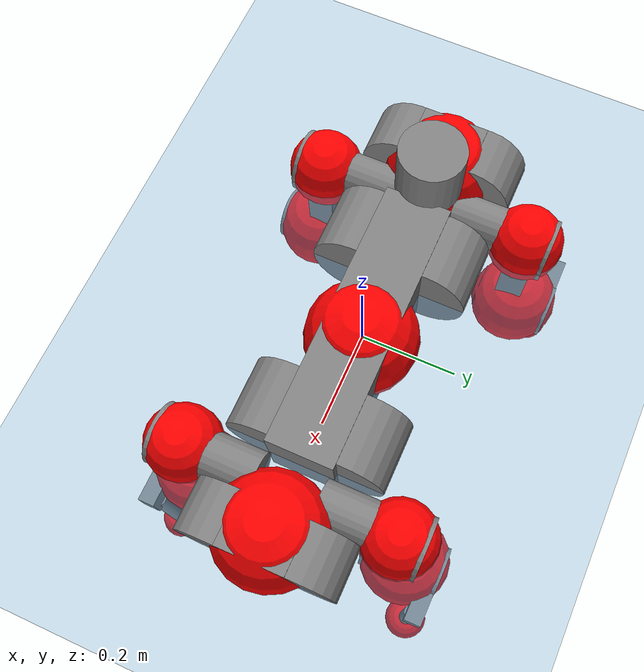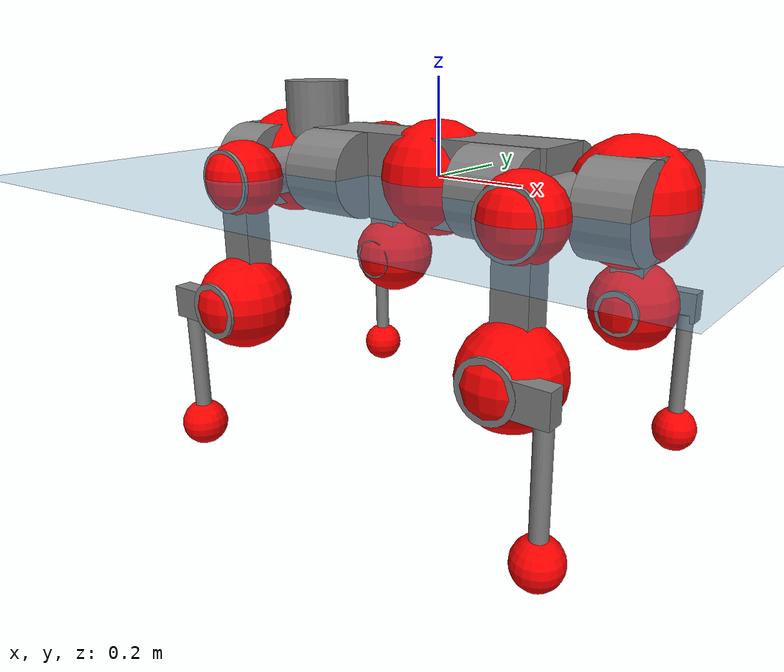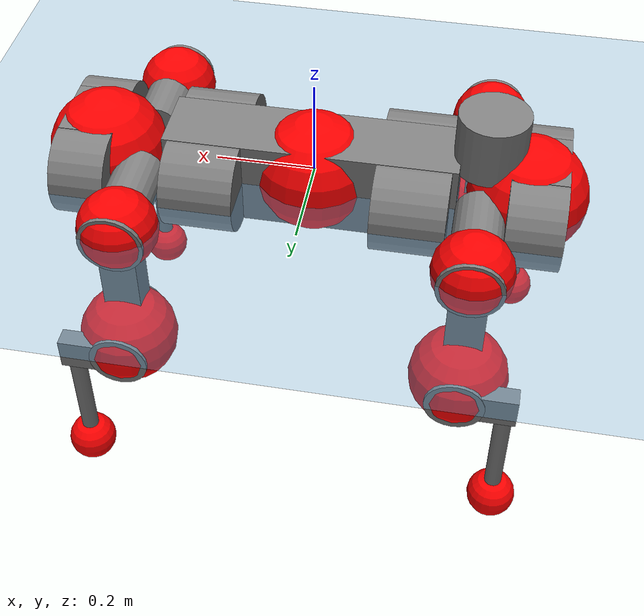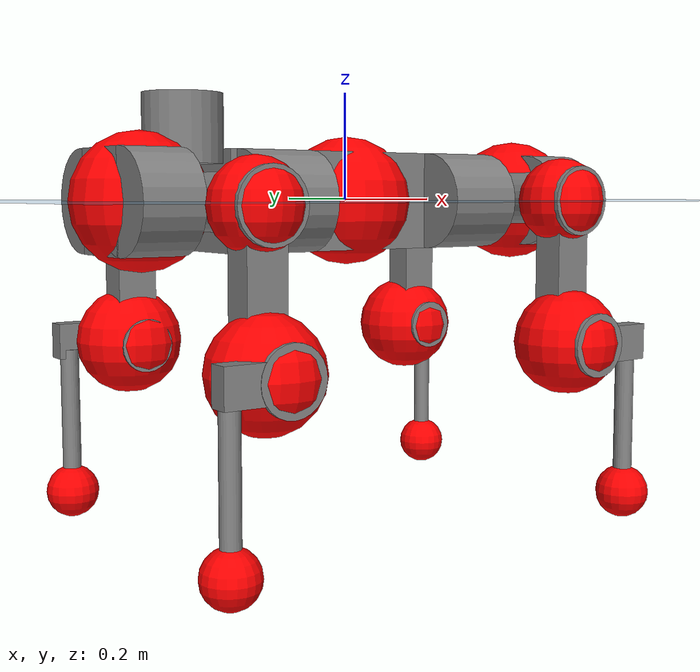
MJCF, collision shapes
<mujoco model="anymal_c">
  <compiler angle="radian" assetdir="assets" balanceinertia="true" inertiafromgeom="false"/>

  <option timestep="0.005" density="1.2" viscosity="2e-05"/>

  <size nkey="1"/>

  <visual>
    <quality shadowsize="8192"/>
    <map shadowclip="0.5"/>
  </visual>

  <default>
    <default class="/">
      <material specular="0" shininess="0.25"/>
      <geom contype="0" conaffinity="0" group="1" solref="-1000 -80"/>
      <site size="0.01 0.005 0.005" group="5"/>
      <general forcelimited="true" forcerange="-80 80" biastype="affine" gainprm="80" biasprm="0 -80 -2"/>
      <default class="anymal_c">
        <joint armature="0.01" damping="0.01" frictionloss="0.1"/>
        <default class="visual">
          <geom type="mesh" group="2"/>
          <default class="visual_zflip"/>
        </default>
        <default class="collision">
          <geom type="cylinder" group="3"/>
          <default class="foot">
            <geom size="0.03 0 0" type="sphere" condim="6" priority="1" friction="0.8 0.02 0.01" solimp="0.015 1 0.03"/>
          </default>
        </default>
      </default>
      <default class="reward_collision_sphere">
        <geom group="5" rgba="1 0 0 1"/>
      </default>
    </default>
  </default>

  <asset>
    <texture type="skybox" colorspace="auto" name="//unnamed_texture_0" builtin="gradient" rgb1="0.95 0.95 0.95" rgb2="0.95 0.95 0.95" width="100" height="600"/>
    <texture type="2d" colorspace="auto" name="texplane" builtin="checker" rgb1="0.345 0.575 0.748" rgb2="0.345 0.575 0.748" markrgb="1 1 1" width="512" height="512"/>
    <texture type="2d" colorspace="linear" name="base" file="base.png"/>
    <texture type="2d" colorspace="linear" name="top_shell" file="top_shell.png"/>
    <texture type="2d" colorspace="linear" name="bottom_shell" file="bottom_shell.png"/>
    <texture type="2d" colorspace="linear" name="remote" file="remote.png"/>
    <texture type="2d" colorspace="linear" name="hatch" file="hatch.png"/>
    <texture type="2d" colorspace="linear" name="handle" file="handle.png"/>
    <texture type="2d" colorspace="linear" name="face" file="face.png"/>
    <texture type="2d" colorspace="linear" name="battery" file="battery.png"/>
    <texture type="2d" colorspace="linear" name="lidar_cage" file="lidar_cage.png"/>
    <texture type="2d" colorspace="linear" name="depth_camera" file="depth_camera.png"/>
    <texture type="2d" colorspace="linear" name="wide_angle_camera" file="wide_angle_camera.png"/>
    <texture type="2d" colorspace="linear" name="lidar" file="lidar.png"/>
    <texture type="2d" colorspace="linear" name="drive" file="drive.png"/>
    <texture type="2d" colorspace="linear" name="hip_l" file="hip_l.png"/>
    <texture type="2d" colorspace="linear" name="shank_l" file="shank_l.png"/>
    <texture type="2d" colorspace="linear" name="foot" file="foot.png"/>
    <texture type="2d" colorspace="linear" name="thigh" file="thigh.png"/>
    <texture type="2d" colorspace="linear" name="shank_r" file="shank_r.png"/>
    <texture type="2d" colorspace="linear" name="hip_r" file="hip_r.png"/>
    <material name="MatPlane" class="/" texture="texplane" texuniform="true" texrepeat="2 2" specular="0.9" shininess="0.5"/>
    <material name="black_plastic" class="/" rgba="0.007 0.007 0.007 1"/>
    <material name="green" class="/" rgba="0.052 0.178 0.033 1"/>
    <material name="red" class="/" rgba="0.178 0.006 0.005 1"/>
    <material name="yellow" class="/" rgba="0.178 0.119 0.006 1"/>
    <material name="lwl" class="/" rgba="0.8 0.8 0.8 1"/>
    <material name="base" class="/" texture="base"/>
    <material name="top_shell" class="/" texture="top_shell"/>
    <material name="bottom_shell" class="/" texture="bottom_shell"/>
    <material name="hip_l" class="/" texture="hip_l"/>
    <material name="thigh" class="/" texture="thigh"/>
    <material name="shank_l" class="/" texture="shank_l"/>
    <material name="foot" class="/" texture="foot"/>
    <material name="hip_r" class="/" texture="hip_r"/>
    <material name="shank" class="/" texture="shank_r"/>
    <material name="hatch" class="/" texture="hatch"/>
    <material name="remote" class="/" texture="remote"/>
    <material name="handle" class="/" texture="handle"/>
    <material name="face" class="/" texture="face"/>
    <material name="depth_camera" class="/" texture="depth_camera"/>
    <material name="wide_angle_camera" class="/" texture="wide_angle_camera"/>
    <material name="battery" class="/" texture="battery"/>
    <material name="lidar_cage" class="/" texture="lidar_cage"/>
    <material name="lidar" class="/" texture="lidar"/>
    <material name="drive" class="/" texture="drive"/>
    <mesh name="base_0" class="/" file="base_0.obj"/>
    <mesh name="base_1" class="/" file="base_1.obj"/>
    <mesh name="base_2" class="/" file="base_2.obj"/>
    <mesh name="base_3" class="/" file="base_3.obj"/>
    <mesh name="base_4" class="/" file="base_4.obj"/>
    <mesh name="base_5" class="/" file="base_5.obj"/>
    <mesh name="top_shell" class="/" file="top_shell.obj"/>
    <mesh name="bottom_shell" class="/" file="bottom_shell.obj"/>
    <mesh name="remote" class="/" file="remote.obj"/>
    <mesh name="handle" class="/" file="handle.obj"/>
    <mesh name="face" class="/" file="face.obj"/>
    <mesh name="wide_angle_camera" class="/" file="wide_angle_camera.obj"/>
    <mesh name="depth_camera" class="/" file="depth_camera.obj"/>
    <mesh name="battery" class="/" file="battery.obj"/>
    <mesh name="lidar_cage" class="/" file="lidar_cage.obj"/>
    <mesh name="lidar" class="/" file="lidar.obj"/>
    <mesh name="drive" class="/" file="drive.obj"/>
    <mesh name="hip_l" class="/" file="hip_l.obj"/>
    <mesh name="thigh" class="/" file="thigh.obj"/>
    <mesh name="shank_l" class="/" file="shank_l.obj"/>
    <mesh name="foot" class="/" file="foot.obj"/>
    <mesh name="hip_r" class="/" file="hip_r.obj"/>
    <mesh name="hatch" class="/" file="hatch.obj"/>
    <mesh name="shank_r" class="/" file="shank_r.obj"/>
  </asset>

  <worldbody>
    <geom name="floor" class="/" size="100 100 0.125" type="plane" group="0" material="MatPlane"/>
    <light name="toplight_shadow" class="/" pos="0 0 5" dir="0.0990148 0.0990148 -0.990148" type="directional" ambient="0.04 0.04 0.04" diffuse="0.55 0.55 0.55" specular="0.12 0.12 0.12"/>
    <light name="toplight_fill" class="/" pos="0 0 5" dir="0.0990148 0.0990148 -0.990148" type="directional" castshadow="false" ambient="0.04 0.04 0.04" diffuse="0.3 0.3 0.3" specular="0.08 0.08 0.08"/>
    <body name="trunk" childclass="anymal_c" pos="0.000926454 -0.00133463 -0.00265618" quat="1 -0.000126701 7.65863e-05 0.000631812">
      <inertial pos="0.000147064 0.00239166 0.0462791" quat="0.492485 0.498569 0.504105 0.504742" mass="20.1006" diaginertia="0.515835 1.16077 0.161649"/>
      <joint name="//unnamed_joint_0" type="free" armature="0" damping="0" frictionloss="0"/>
      <geom name="//unnamed_geom_1" class="visual" material="green" mesh="base_0"/>
      <geom name="//unnamed_geom_2" class="visual" material="yellow" mesh="base_1"/>
      <geom name="//unnamed_geom_3" class="visual" material="red" mesh="base_2"/>
      <geom name="//unnamed_geom_4" class="visual" material="black_plastic" mesh="base_3"/>
      <geom name="//unnamed_geom_5" class="visual" material="lwl" mesh="base_4"/>
      <geom name="//unnamed_geom_6" class="visual" material="base" mesh="base_5"/>
      <geom name="trunk_1" class="collision" size="0.290858 0.0702072 0.0902664" type="box"/>
      <geom name="trunk_2" class="collision" size="0.0902664 0.0727146" pos="0.205855 0.0787944 0" quat="0.707107 0 0.707107 0"/>
      <geom name="trunk_3" class="collision" size="0.0902664 0.0727146" pos="-0.205855 0.0787944 0" quat="0.707107 0 0.707107 0"/>
      <geom name="trunk_4" class="collision" size="0.0902664 0.0727146" pos="0.205855 -0.0787944 0" quat="0.707107 0 0.707107 0"/>
      <geom name="trunk_5" class="collision" size="0.0902664 0.0727146" pos="-0.205855 -0.0787944 0" quat="0.707107 0 0.707107 0"/>
      <geom name="//unnamed_geom_12" class="visual" material="top_shell" mesh="top_shell"/>
      <geom name="//unnamed_geom_13" class="visual" material="bottom_shell" mesh="bottom_shell"/>
      <geom name="//unnamed_geom_14" class="visual" material="remote" mesh="remote"/>
      <geom name="//unnamed_geom_15" class="visual" material="handle" mesh="handle"/>
      <geom name="//unnamed_geom_16" class="visual" pos="0.392308 0 0" quat="1 0 0 0" material="face" mesh="face"/>
      <geom name="trunk_6" class="collision" size="0.0551628 0.0702072 0.0902664" pos="0.444364 0 0" type="box"/>
      <geom name="//unnamed_geom_18" class="collision" size="0.0902664 0.0551628" pos="0.444364 0.0787944 0" quat="0.707107 0 0.707107 0"/>
      <geom name="//unnamed_geom_19" class="collision" size="0.0902664 0.0551628" pos="0.444364 -0.0787944 0" quat="0.707107 0 0.707107 0"/>
      <geom name="//unnamed_geom_20" class="visual" pos="0.436934 0 -0.0272806" quat="0.965926 0 0.258819 0" material="depth_camera" mesh="depth_camera"/>
      <geom name="//unnamed_geom_21" class="visual" pos="0.485535 0 0.0140237" material="wide_angle_camera" mesh="wide_angle_camera"/>
      <geom name="//unnamed_geom_22" class="visual_zflip" pos="-0.392308 0 0" quat="0 0 0 1" material="face" mesh="face"/>
      <geom name="trunk_7" class="collision" size="0.0551628 0.0702072 0.0902664" pos="-0.444364 0 0" quat="0 0 0 1" type="box"/>
      <geom name="//unnamed_geom_24" class="collision" size="0.0902664 0.0551628" pos="-0.444364 -0.0787944 0" quat="0 -0.707107 0 0.707107"/>
      <geom name="//unnamed_geom_25" class="collision" size="0.0902664 0.0551628" pos="-0.444364 0.0787944 0" quat="0 -0.707107 0 0.707107"/>
      <geom name="//unnamed_geom_26" class="visual" pos="-0.436934 0 -0.0272806" quat="0 -0.258819 0 0.965926" material="depth_camera" mesh="depth_camera"/>
      <geom name="//unnamed_geom_27" class="visual_zflip" pos="-0.485535 0 0.0140237" quat="0 0 0 1" material="wide_angle_camera" mesh="wide_angle_camera"/>
      <geom name="//unnamed_geom_28" class="visual" material="battery" mesh="battery"/>
      <geom name="//unnamed_geom_29" class="visual" pos="0 0.0884167 0.0272871" quat="0.683013 -0.183013 0.183013 0.683013" material="depth_camera" mesh="depth_camera"/>
      <geom name="//unnamed_geom_30" class="visual" pos="0 -0.0884167 0.0272871" quat="0.683013 0.183013 0.183013 -0.683013" material="depth_camera" mesh="depth_camera"/>
      <geom name="//unnamed_geom_31" class="visual" pos="-0.344512 0 0.0688537" quat="1 0 0 0" material="lidar_cage" mesh="lidar_cage"/>
      <geom name="trunk_8" class="collision" size="0.0702072 0.0601776" pos="-0.344512 0 0.125061"/>
      <geom name="//unnamed_geom_33" class="visual" pos="-0.344512 7.03921e-05 0.133211" quat="0.707107 0 0 -0.707107" material="lidar" mesh="lidar"/>
      <geom name="//unnamed_geom_34" class="visual" pos="0.283844 0.116999 3.25768e-09" quat="0.258819 0.965926 0 0" material="drive" mesh="drive"/>
      <geom name="//unnamed_geom_35" class="visual" pos="0.283844 -0.116999 -3.25768e-09" quat="0.258819 -0.965926 0 0" material="drive" mesh="drive"/>
      <geom name="//unnamed_geom_36" class="visual" pos="-0.283844 0.116999 -3.25768e-09" quat="0 0 0.965926 -0.258819" material="drive" mesh="drive"/>
      <geom name="//unnamed_geom_37" class="visual" pos="-0.283844 -0.116999 3.25768e-09" quat="0 0 -0.965926 -0.258819" material="drive" mesh="drive"/>
      <geom name="//unnamed_geom_38" class="visual" pos="0.10979 0 0.0683853" quat="1 0 0 0" material="hatch" mesh="hatch"/>
      <geom name="//unnamed_geom_39" class="reward_collision_sphere" size="0.120355"/>
      <geom name="//unnamed_geom_40" class="reward_collision_sphere" size="0.120355" pos="0.425908 0 0"/>
      <geom name="//unnamed_geom_41" class="reward_collision_sphere" size="0.120355" pos="-0.425908 0 0"/>
      <site name="imu" pos="0.231914 0.00863406 0.042495" size="0.0100296"/>
      <camera name="track" pos="0 -2.25127 0" quat="0.707107 0.707107 0 0" mode="trackcom"/>
      <camera name="ego_camera" pos="0.425908 0 -0.0374714" quat="-0.5 -0.5 0.5 0.5"/>
      <body name="LF_HIP" pos="0.28524 0.117315 0.000415288" quat="0.258756 0.965943 1.99285e-05 -7.38448e-05">
        <inertial pos="0.0535136 -0.0170206 -0.00812947" quat="-0.134487 0.720198 -0.133779 0.667331" mass="2.85083" diaginertia="0.00456601 0.00884236 0.00244851"/>
        <joint name="LF_HAA" pos="0 0 0" axis="0.999869 -0.0160169 -0.00249256" range="-0.763746 0.448597" armature="0.0102747" damping="0.00727954" frictionloss="0.104601"/>
        <geom name="//unnamed_geom_42" class="visual" pos="0 0.000191634 -3.14758e-05" quat="0.258819 -0.965926 0 0" material="hip_l" mesh="hip_l"/>
        <geom name="//unnamed_geom_43" class="visual" pos="0.056693 -0.0709877 -0.0395879" quat="0.183013 -0.683013 0.683013 0.183013" material="drive" mesh="drive"/>
        <geom name="//unnamed_geom_44" class="collision" size="0.050148 0.0702072" pos="0.056693 -0.0134624 -0.0064685" quat="-0.353553 -0.612372 0.612372 -0.353553"/>
        <body name="LF_THIGH" pos="0.0567995 -0.0796379 -0.035917" quat="0.181924 -0.682736 0.683681 0.182635">
          <inertial pos="0.0302998 -0.00270553 -0.231862" quat="0.992736 -0.00204171 -0.0917927 0.0777445" mass="3.15019" diaginertia="0.022972 0.0519694 0.00298794"/>
          <joint name="LF_HFE" pos="0 0 0" axis="0.999983 -0.00573879 -0.00102622" stiffness="0.0124009" range="-3.16606 3.16993" armature="0.0088386" damping="0.0175917" frictionloss="0.0900276"/>
          <geom name="//unnamed_geom_45" class="visual" pos="-0.00356483 -5.61734e-06 0" quat="0.707107 0 0 -0.707107" material="thigh" mesh="thigh"/>
          <geom name="//unnamed_geom_46" class="collision" size="0.0651924 0.0401184" pos="0.0378585 0 0" quat="0.5 0.5 -0.5 -0.5"/>
          <geom name="//unnamed_geom_47" class="collision" size="0.037611 0.0300888 0.141732" pos="0.0283938 0 -0.132381" quat="0.707107 0 0 -0.707107" type="box"/>
          <geom name="//unnamed_geom_48" class="visual" pos="0.0949301 0 -0.266984" quat="1 0 0 0" material="drive" mesh="drive"/>
          <geom name="//unnamed_geom_49" class="collision" size="0.050148 0.0702072" pos="0.0286778 0 -0.266984" quat="0.707107 0 0.707107 0"/>
          <geom name="//unnamed_geom_50" class="reward_collision_sphere" size="0.0802368" pos="0.0236615 0 0"/>
          <body name="LF_SHANK" pos="0.0964018 0.000989848 -0.269449" quat="1 0.000152144 0.000155433 -0.000234861">
            <inertial pos="0.00606477 -0.0705367 -0.0756884" quat="0.991676 -0.127393 0.000486705 -0.0187133" mass="0.601262" diaginertia="0.00760711 0.0160557 0.000784244"/>
            <joint name="LF_KFE" pos="0 0 0" axis="0.999998 -0.00143147 -0.00169062" stiffness="0.00365877" range="-3.19557 3.14495" armature="0.00889811" damping="0.00938346" frictionloss="0.113704"/>
            <geom name="//unnamed_geom_51" class="visual" pos="-0.00116241 -0.00619804 0" quat="0.707107 0 0 -0.707107" material="shank_l" mesh="shank_l"/>
            <geom name="LF_kfe_act" class="collision" size="0.0601776 0.0200592" pos="0.0189292 0 0" quat="0.5 0.5 -0.5 -0.5"/>
            <geom name="//unnamed_geom_53" class="collision" size="0.0576692 0.0338499 0.0190562" pos="0.0189292 -0.0647228 0" quat="0.5 0.5 -0.5 -0.5" type="box"/>
            <geom name="//unnamed_geom_54" class="visual" pos="0.0123516 -0.100997 -0.316605" quat="0.382683 0 0 -0.92388" material="foot" mesh="foot"/>
            <geom name="LF_calf" class="collision" size="0.0175518 0.14167" pos="0.0123513 -0.0989995 -0.158303" quat="0.707107 0 0 -0.707107"/>
            <geom name="LF_foot" class="foot" size="0.0289591" pos="0.0123513 -0.0989995 -0.295527" quat="0.707107 0 0 -0.707107"/>
            <geom name="//unnamed_geom_57" class="reward_collision_sphere" size="0.100296" pos="-0.0473231 0 0"/>
            <geom name="//unnamed_geom_58" class="reward_collision_sphere" size="0.050148" pos="0.0123513 -0.0989995 -0.295527"/>
            <site name="LF_foot" class="foot" pos="0.0123513 -0.0989995 -0.295527" quat="0.707107 0 0 -0.707107" size="0.0100296"/>
          </body>
        </body>
      </body>
      <body name="RF_HIP" pos="0.286529 -0.119521 0.00605414" quat="0.257822 -0.966192 0.000492996 0.000388853">
        <inertial pos="0.0524753 0.0203768 -0.010204" quat="0.130722 0.677681 0.126118 0.712569" mass="2.68031" diaginertia="0.00434326 0.00888662 0.00242587"/>
        <joint name="RF_HAA" pos="0 0 0" axis="0.999935 0.00292419 0.0110306" stiffness="0.0154467" range="-0.484958 0.710817" armature="0.00880041" damping="0.0106159" frictionloss="0.113301"/>
        <geom name="//unnamed_geom_59" class="visual" pos="0 -0.000191633 -3.14757e-05" quat="0.258819 0.965926 0 0" material="hip_r" mesh="hip_r"/>
        <geom name="//unnamed_geom_60" class="visual" pos="0.056693 0.0709877 -0.0395879" quat="0.183013 0.683013 0.683013 -0.183013" material="drive" mesh="drive"/>
        <geom name="//unnamed_geom_61" class="collision" size="0.050148 0.0702072" pos="0.056693 0.0134624 -0.0064685" quat="-0.353553 0.612372 0.612372 0.353553"/>
        <body name="RF_THIGH" pos="0.0542905 0.0771046 -0.0375062" quat="0.18316 0.683125 0.682811 -0.183199">
          <inertial pos="0.0315381 -0.0015569 -0.231622" quat="0.991129 -0.00571701 -0.091901 0.095835" mass="3.18839" diaginertia="0.0225179 0.0537045 0.00300163"/>
          <joint name="RF_HFE" pos="0 0 0" axis="0.999994 0.00324807 0.000908019" range="-3.12696 3.19313" armature="0.0104953" damping="0.00433669" frictionloss="0.0918863"/>
          <geom name="//unnamed_geom_62" class="visual" pos="-0.00356483 -5.61734e-06 0" quat="0.707107 0 0 -0.707107" material="thigh" mesh="thigh"/>
          <geom name="//unnamed_geom_63" class="collision" size="0.0651924 0.0401184" pos="0.0378585 0 0" quat="0.5 0.5 0.5 0.5"/>
          <geom name="//unnamed_geom_64" class="collision" size="0.037611 0.0300888 0.141732" pos="0.0283938 0 -0.132381" quat="0.707107 0 0 0.707107" type="box"/>
          <geom name="//unnamed_geom_65" class="visual" pos="0.0949301 0 -0.266984" quat="1 0 0 0" material="drive" mesh="drive"/>
          <geom name="//unnamed_geom_66" class="collision" size="0.050148 0.0702072" pos="0.0286778 0 -0.266984" quat="0.707107 0 0.707107 0"/>
          <geom name="//unnamed_geom_67" class="reward_collision_sphere" size="0.0802368" pos="0.0236615 0 0"/>
          <body name="RF_SHANK" pos="0.0910628 0.000925641 -0.268907" quat="0.999999 -8.15788e-05 -0.000482789 -0.000972454">
            <inertial pos="0.0035746 0.0703584 -0.0756754" quat="0.992311 0.122596 -0.00652165 0.0157047" mass="0.574842" diaginertia="0.00721587 0.0163521 0.000763484"/>
            <joint name="RF_KFE" pos="0 0 0" axis="0.999998 0.00133372 0.00128376" range="-3.07789 3.18691" armature="0.00932236" damping="0.0169714" frictionloss="0.0867985"/>
            <geom name="//unnamed_geom_68" class="visual" pos="-0.00116241 0.00619803 0" quat="0.707107 0 0 0.707107" material="shank" mesh="shank_r"/>
            <geom name="RF_kfe_act" class="collision" size="0.0601776 0.0200592" pos="0.0189292 0 0" quat="0.5 0.5 0.5 0.5"/>
            <geom name="//unnamed_geom_70" class="collision" size="0.0576692 0.0338499 0.0190562" pos="0.0189292 0.0647228 0" quat="0.5 0.5 0.5 0.5" type="box"/>
            <geom name="//unnamed_geom_71" class="visual" pos="0.012351 0.100997 -0.316605" quat="0.382683 0 0 0.92388" material="foot" mesh="foot"/>
            <geom name="RF_calf" class="collision" size="0.0175518 0.14167" pos="0.0123513 0.0989995 -0.158303" quat="0.707107 0 0 0.707107"/>
            <geom name="RF_foot" class="foot" size="0.033487" pos="0.0123513 0.0989995 -0.295527" quat="0.707107 0 0 0.707107"/>
            <geom name="//unnamed_geom_74" class="reward_collision_sphere" size="0.100296" pos="-0.0473231 0 0"/>
            <geom name="//unnamed_geom_75" class="reward_collision_sphere" size="0.050148" pos="0.0123513 0.0989995 -0.295527"/>
            <site name="RF_foot" class="foot" pos="0.0123513 0.0989995 -0.295527" quat="0.707107 0 0 0.707107" size="0.0100296"/>
          </body>
        </body>
      </body>
      <body name="LH_HIP" pos="-0.283148 0.119779 0.0016842" quat="0.000135388 -2.20494e-06 0.965902 -0.258908">
        <inertial pos="0.0558228 0.0145644 -0.00612153" quat="0.135911 0.670534 0.130869 0.717486" mass="2.81085" diaginertia="0.00419161 0.00834237 0.00235197"/>
        <joint name="LH_HAA" pos="0 0 0" axis="0.999934 0.00478924 -0.0104732" range="-0.498132 0.669443" armature="0.00886706" damping="0.0106318" frictionloss="0.10268"/>
        <geom name="//unnamed_geom_76" class="visual" pos="0 -0.000191633 -3.14757e-05" quat="-0.258819 -0.965926 0 0" material="hip_r" mesh="hip_r"/>
        <geom name="//unnamed_geom_77" class="visual" pos="0.056693 0.0709877 -0.0395879" quat="0.183013 0.683013 0.683013 -0.183013" material="drive" mesh="drive"/>
        <geom name="//unnamed_geom_78" class="collision" size="0.050148 0.0702072" pos="0.056693 0.0134624 -0.0064685" quat="-0.353553 0.612372 0.612372 0.353553"/>
        <body name="LH_THIGH" pos="0.0559852 0.0787749 -0.0393991" quat="0.183443 0.683018 0.68307 -0.182347">
          <inertial pos="0.028677 -0.00334048 -0.227265" quat="0.992997 -0.00603349 -0.0783018 0.0882553" mass="3.16811" diaginertia="0.022242 0.0550505 0.00296899"/>
          <joint name="LH_HFE" pos="0 0 0" axis="0.999887 0.00447983 -0.014382" range="-3.16846 3.14899" armature="0.0107443" damping="0.0106367" frictionloss="0.0901052"/>
          <geom name="//unnamed_geom_79" class="visual" pos="-0.00356483 -5.61734e-06 0" quat="0.707107 0 0 -0.707107" material="thigh" mesh="thigh"/>
          <geom name="//unnamed_geom_80" class="collision" size="0.0651924 0.0401184" pos="0.0378585 0 0" quat="0.5 0.5 -0.5 -0.5"/>
          <geom name="//unnamed_geom_81" class="collision" size="0.037611 0.0300888 0.141732" pos="0.0283938 0 -0.132381" quat="0.707107 0 0 -0.707107" type="box"/>
          <geom name="//unnamed_geom_82" class="visual" pos="0.0949301 0 -0.266984" quat="1 0 0 0" material="drive" mesh="drive"/>
          <geom name="//unnamed_geom_83" class="collision" size="0.050148 0.0702072" pos="0.0286778 0 -0.266984" quat="0.707107 0 0.707107 0"/>
          <geom name="//unnamed_geom_84" class="reward_collision_sphere" size="0.0802368" pos="0.0236615 0 0"/>
          <body name="LH_SHANK" pos="0.092871 -0.00205289 -0.26523" quat="0.999999 0.000785929 0.000625138 -0.000375981">
            <inertial pos="0.00450408 0.0687857 -0.076073" quat="0.992936 0.11587 -0.00116115 0.0255116" mass="0.585953" diaginertia="0.00778643 0.0168744 0.000820436"/>
            <joint name="LH_KFE" pos="0 0 0" axis="0.999988 0.000112803 -0.00484464" range="-3.18842 3.13031" armature="0.00864701" damping="0.0115895" frictionloss="0.0926394"/>
            <geom name="//unnamed_geom_85" class="visual" pos="-0.00116241 0.00619803 0" quat="-0.707107 0 0 -0.707107" material="shank" mesh="shank_r"/>
            <geom name="LH_kfe_act" class="collision" size="0.0601776 0.0200592" pos="0.0189292 0 0" quat="0.5 0.5 -0.5 -0.5"/>
            <geom name="//unnamed_geom_87" class="collision" size="0.0576692 0.0338499 0.0190562" pos="0.0189292 0.0647228 0" quat="0.5 0.5 -0.5 -0.5" type="box"/>
            <geom name="//unnamed_geom_88" class="visual" pos="0.012351 0.100997 -0.316605" quat="-0.382683 0 0 -0.92388" material="foot" mesh="foot"/>
            <geom name="LH_calf" class="collision" size="0.0175518 0.14167" pos="0.0123513 0.0989995 -0.158303" quat="0.707107 0 0 -0.707107"/>
            <geom name="LH_foot" class="foot" size="0.0325858" pos="0.0123513 0.0989995 -0.295527" quat="0.707107 0 0 -0.707107"/>
            <geom name="//unnamed_geom_91" class="reward_collision_sphere" size="0.100296" pos="-0.0473231 0 0"/>
            <geom name="//unnamed_geom_92" class="reward_collision_sphere" size="0.050148" pos="0.0123513 0.0989995 -0.295527"/>
            <site name="LH_foot" class="foot" pos="0.0123513 0.0989995 -0.295527" quat="0.707107 0 0 -0.707107" size="0.0100296"/>
          </body>
        </body>
      </body>
      <body name="RH_HIP" pos="-0.281341 -0.116523 0.000291846" quat="0.0013805 -0.000430511 -0.965777 -0.259371">
        <inertial pos="0.053472 -0.0199325 -0.00956755" quat="-0.131108 0.708811 -0.138254 0.679179" mass="2.70813" diaginertia="0.00431645 0.00891568 0.00220868"/>
        <joint name="RH_HAA" pos="0 0 0" axis="0.999993 -0.000844848 -0.00356118" range="-0.768343 0.515666" armature="0.00929859" damping="0.00361287" frictionloss="0.108975"/>
        <geom name="//unnamed_geom_93" class="visual" pos="0 0.000191634 -3.14758e-05" quat="-0.258819 0.965926 0 0" material="hip_l" mesh="hip_l"/>
        <geom name="//unnamed_geom_94" class="visual" pos="0.056693 -0.0709877 -0.0395879" quat="-0.183013 0.683013 -0.683013 -0.183013" material="drive" mesh="drive"/>
        <geom name="//unnamed_geom_95" class="collision" size="0.050148 0.0702072" pos="0.056693 -0.0134624 -0.0064685" quat="0.353553 0.612372 -0.612372 0.353553"/>
        <body name="RH_THIGH" pos="0.055361 -0.0813952 -0.0408907" quat="-0.183105 0.68223 -0.683905 -0.182505">
          <inertial pos="0.0285608 -0.000637862 -0.230018" quat="0.993033 -0.00932463 -0.0858269 0.0802006" mass="3.29314" diaginertia="0.0233873 0.0537934 0.00305138"/>
          <joint name="RH_HFE" pos="0 0 0" axis="0.999971 0.00416481 -0.00642498" range="-3.1412 3.08205" armature="0.0112594" damping="0.00796361" frictionloss="0.0996274"/>
          <geom name="//unnamed_geom_96" class="visual" pos="-0.00356483 -5.61734e-06 0" quat="0.707107 0 0 -0.707107" material="thigh" mesh="thigh"/>
          <geom name="//unnamed_geom_97" class="collision" size="0.0651924 0.0401184" pos="0.0378585 0 0" quat="0.5 0.5 0.5 0.5"/>
          <geom name="//unnamed_geom_98" class="collision" size="0.037611 0.0300888 0.141732" pos="0.0283938 0 -0.132381" quat="0.707107 0 0 0.707107" type="box"/>
          <geom name="//unnamed_geom_99" class="visual" pos="0.0949301 0 -0.266984" quat="1 0 0 0" material="drive" mesh="drive"/>
          <geom name="//unnamed_geom_100" class="collision" size="0.050148 0.0702072" pos="0.0286778 0 -0.266984" quat="0.707107 0 0.707107 0"/>
          <geom name="//unnamed_geom_101" class="reward_collision_sphere" size="0.0802368" pos="0.0236615 0 0"/>
          <body name="RH_SHANK" pos="0.0968153 7.10564e-05 -0.265382" quat="1 -5.58763e-05 -0.000184911 -0.000106088">
            <inertial pos="0.003233 -0.0669239 -0.0749957" quat="0.992738 -0.117543 -0.00238017 -0.0254662" mass="0.60628" diaginertia="0.00800502 0.017267 0.000804664"/>
            <joint name="RH_KFE" pos="0 0 0" axis="0.999999 -0.00149909 -0.000736214" stiffness="0.00809705" range="-3.15583 3.1832" armature="0.0096839" damping="0" frictionloss="0.110794"/>
            <geom name="//unnamed_geom_102" class="visual" pos="-0.00116241 -0.00619804 0" quat="0.707107 0 0 -0.707107" material="shank_l" mesh="shank_l"/>
            <geom name="RH_kfe_act" class="collision" size="0.0601776 0.0200592" pos="0.0189292 0 0" quat="0.5 0.5 0.5 0.5"/>
            <geom name="//unnamed_geom_104" class="collision" size="0.0576692 0.0338499 0.0190562" pos="0.0189292 -0.0647228 0" quat="0.5 0.5 0.5 0.5" type="box"/>
            <geom name="//unnamed_geom_105" class="visual" pos="0.0123516 -0.100997 -0.316605" quat="0.382683 0 0 -0.92388" material="foot" mesh="foot"/>
            <geom name="RH_calf" class="collision" size="0.0175518 0.14167" pos="0.0123513 -0.0989995 -0.158303" quat="0.707107 0 0 0.707107"/>
            <geom name="RH_foot" class="foot" size="0.0263255" pos="0.0123513 -0.0989995 -0.295527" quat="0.707107 0 0 0.707107"/>
            <geom name="//unnamed_geom_108" class="reward_collision_sphere" size="0.100296" pos="-0.0473231 0 0"/>
            <geom name="//unnamed_geom_109" class="reward_collision_sphere" size="0.050148" pos="0.0123513 -0.0989995 -0.295527"/>
            <site name="RH_foot" class="foot" pos="0.0123513 -0.0989995 -0.295527" quat="0.707107 0 0 0.707107" size="0.0100296"/>
          </body>
        </body>
      </body>
    </body>
  </worldbody>

  <contact>
    <pair class="/" geom1="floor" geom2="LF_foot" name="//unnamed_contact_0"/>
    <pair class="/" geom1="floor" geom2="RF_foot" name="//unnamed_contact_1"/>
    <pair class="/" geom1="floor" geom2="LH_foot" name="//unnamed_contact_2"/>
    <pair class="/" geom1="floor" geom2="RH_foot" name="//unnamed_contact_3"/>
  </contact>

  <actuator>
    <general name="LF_HAA" class="/" joint="LF_HAA" forcerange="-88.2735 88.2735" gainprm="81.9227" biasprm="0 -81.9227 -2.28036"/>
    <general name="LF_HFE" class="/" joint="LF_HFE" forcerange="-81.1669 81.1669" gainprm="81.9227" biasprm="0 -81.9227 -2.28036"/>
    <general name="LF_KFE" class="/" joint="LF_KFE" forcerange="-81.3416 81.3416" gainprm="81.9227" biasprm="0 -81.9227 -2.28036"/>
    <general name="RF_HAA" class="/" joint="RF_HAA" forcerange="-73.4188 73.4188" gainprm="81.9227" biasprm="0 -81.9227 -2.28036"/>
    <general name="RF_HFE" class="/" joint="RF_HFE" forcerange="-82.9385 82.9385" gainprm="81.9227" biasprm="0 -81.9227 -2.28036"/>
    <general name="RF_KFE" class="/" joint="RF_KFE" forcerange="-78.0169 78.0169" gainprm="81.9227" biasprm="0 -81.9227 -2.28036"/>
    <general name="LH_HAA" class="/" joint="LH_HAA" forcerange="-73.3792 73.3792" gainprm="81.9227" biasprm="0 -81.9227 -2.28036"/>
    <general name="LH_HFE" class="/" joint="LH_HFE" forcerange="-81.0966 81.0966" gainprm="81.9227" biasprm="0 -81.9227 -2.28036"/>
    <general name="LH_KFE" class="/" joint="LH_KFE" forcerange="-89.8188 89.8188" gainprm="81.9227" biasprm="0 -81.9227 -2.28036"/>
    <general name="RH_HAA" class="/" joint="RH_HAA" forcerange="-73.424 73.424" gainprm="81.9227" biasprm="0 -81.9227 -2.28036"/>
    <general name="RH_HFE" class="/" joint="RH_HFE" forcerange="-89.0189 89.0189" gainprm="81.9227" biasprm="0 -81.9227 -2.28036"/>
    <general name="RH_KFE" class="/" joint="RH_KFE" forcerange="-77.2213 77.2213" gainprm="81.9227" biasprm="0 -81.9227 -2.28036"/>
  </actuator>

  <sensor>
    <gyro site="imu" name="imu_angular_velocity"/>
    <velocimeter site="imu" name="imu_linear_velocity"/>
    <framelinvel objtype="site" objname="LF_foot" name="LF_foot_global_linear_velocity"/>
    <framelinvel objtype="site" objname="RF_foot" name="RF_foot_global_linear_velocity"/>
    <framelinvel objtype="site" objname="LH_foot" name="LH_foot_global_linear_velocity"/>
    <framelinvel objtype="site" objname="RH_foot" name="RH_foot_global_linear_velocity"/>
  </sensor>

  <keyframe>
    <key name="home" qpos="0 0 0.55 1 0 0 0 0 0.4 -0.8 0 -0.4 0.8 0 -0.4 0.8 0 0.4 -0.8"/>
  </keyframe>
</mujoco>
